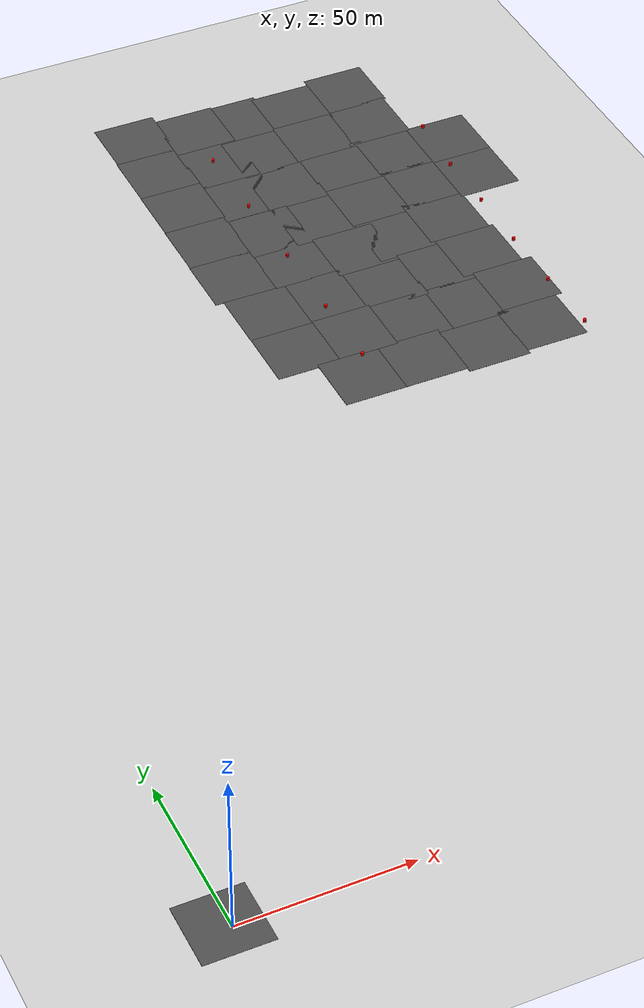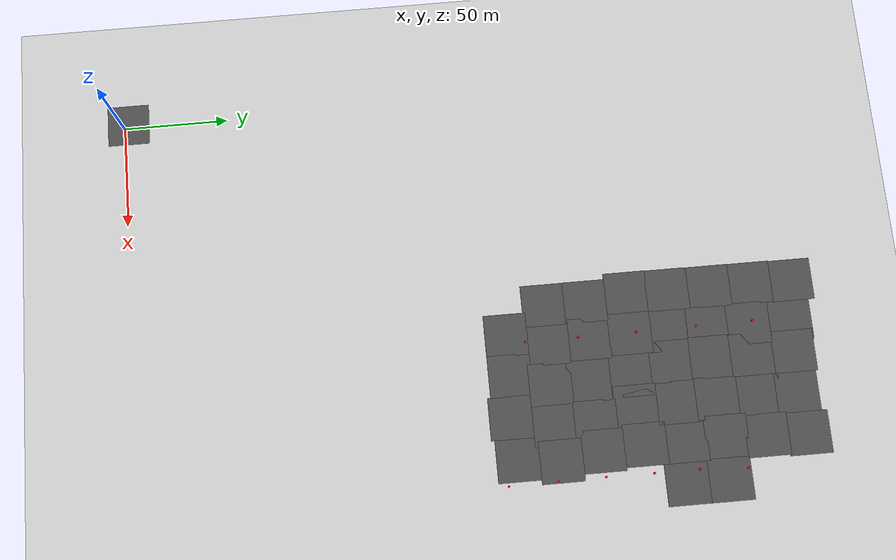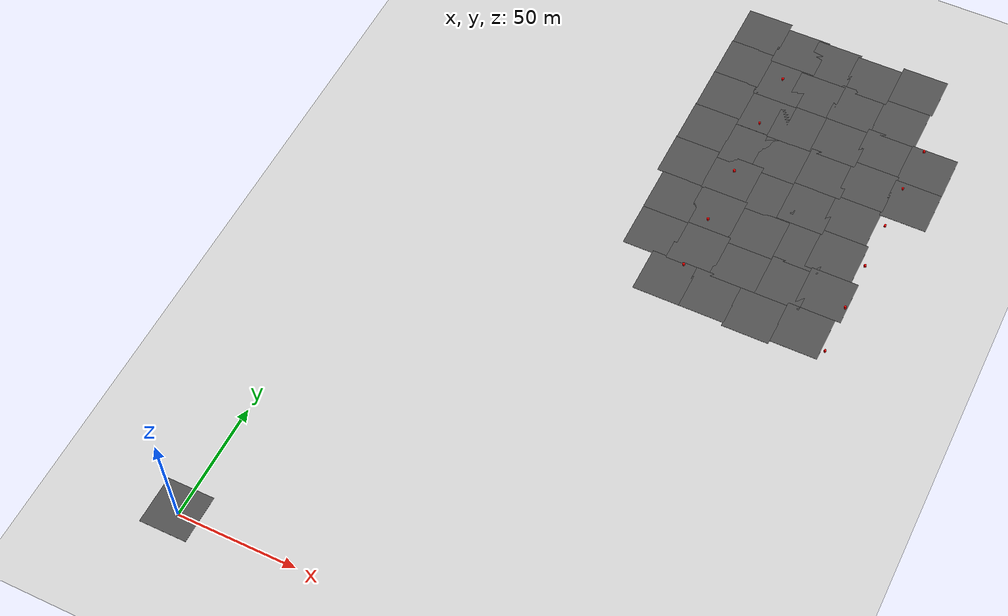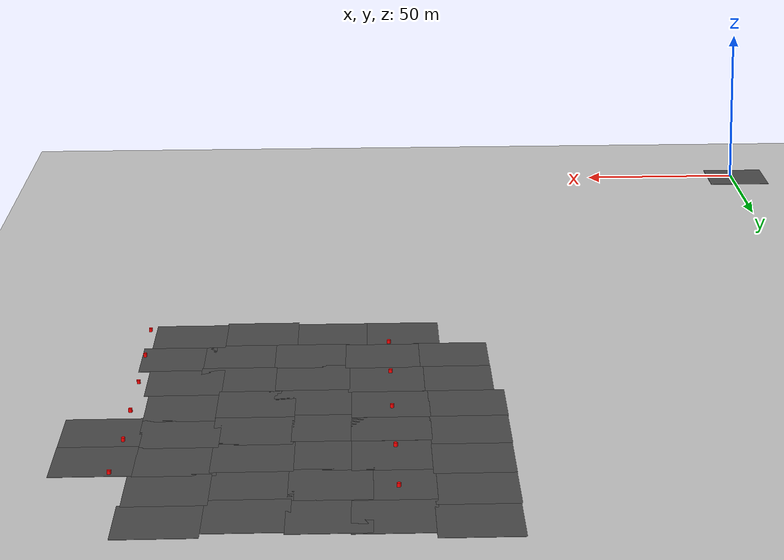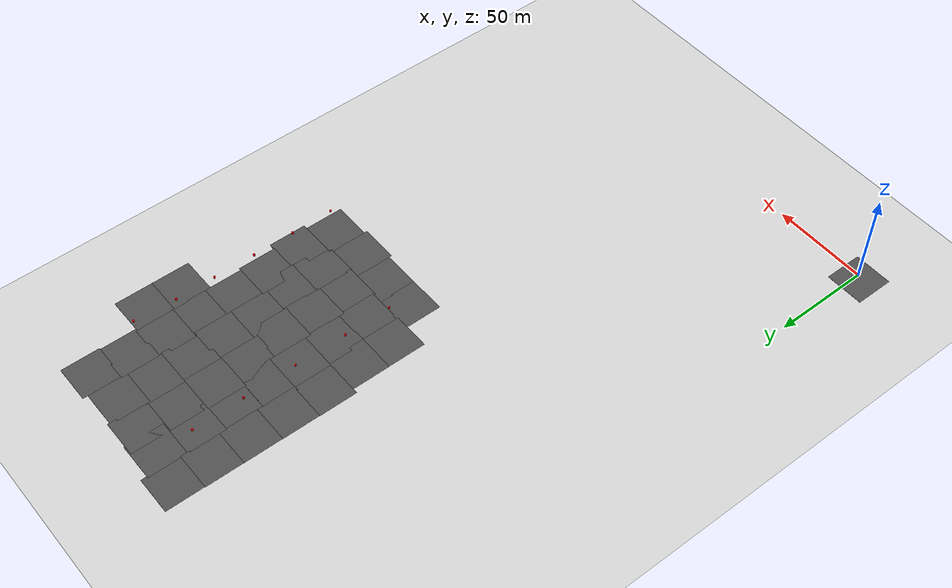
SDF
<sdf version="1.6">
 <world name="default">
  <model name="ground_plane">
   <static>1</static>
   <link name="link">
    <collision name="collision">
     <geometry><plane><normal>0 0 1</normal><size>100 100</size></plane></geometry>
     <surface>
      <contact><collide_bitmask>65535</collide_bitmask></contact>
      <friction><ode><mu>100</mu><mu2>50</mu2></ode></friction>
     </surface>
    </collision>
    <visual name="visual">
     <cast_shadows>0</cast_shadows>
     <geometry><plane><normal>0 0 1</normal><size>100 100</size></plane></geometry>
     <material>
      <script><uri>file://media/materials/scripts/gazebo.material</uri><name>Gazebo/Grey</name></script>
     </material>
    </visual>
   </link>
  </model>
  <model name="asphalt_plane">
   <static>1</static>
   <link name="link">
    <collision name="collision"><geometry><box><size>20 20 0.1</size></box></geometry></collision>
    <visual name="visual">
     <cast_shadows>0</cast_shadows>
     <geometry><box><size>20 20 0.1</size></box></geometry>
     <material>
      <script>
       <uri>model://asphalt_plane/materials/scripts</uri>
       <uri>model://asphalt_plane/materials/textures</uri>
       <name>vrc/asphalt</name>
      </script>
     </material>
    </visual>
   </link>
   <pose>-1.68563 1.69754 0 0 -0 0</pose>
  </model>
  <model name="asphalt_plane_209">
   <static>1</static>
   <link name="link">
    <collision name="collision"><geometry><box><size>20 20 0.1</size></box></geometry></collision>
    <visual name="visual">
     <cast_shadows>0</cast_shadows>
     <geometry><box><size>20 20 0.1</size></box></geometry>
     <material>
      <script>
       <uri>model://asphalt_plane/materials/scripts</uri>
       <uri>model://asphalt_plane/materials/textures</uri>
       <name>vrc/asphalt</name>
      </script>
     </material>
    </visual>
   </link>
   <pose>177.845 175.682 0 0 -0 0</pose>
  </model>
  <model name="asphalt_plane_210">
   <static>1</static>
   <link name="link">
    <collision name="collision"><geometry><box><size>20 20 0.1</size></box></geometry></collision>
    <visual name="visual">
     <cast_shadows>0</cast_shadows>
     <geometry><box><size>20 20 0.1</size></box></geometry>
     <material>
      <script>
       <uri>model://asphalt_plane/materials/scripts</uri>
       <uri>model://asphalt_plane/materials/textures</uri>
       <name>vrc/asphalt</name>
      </script>
     </material>
    </visual>
   </link>
   <pose>158.044 174.16 0 0 -0 0</pose>
  </model>
  <model name="asphalt_plane_211">
   <static>1</static>
   <link name="link">
    <collision name="collision"><geometry><box><size>20 20 0.1</size></box></geometry></collision>
    <visual name="visual">
     <cast_shadows>0</cast_shadows>
     <geometry><box><size>20 20 0.1</size></box></geometry>
     <material>
      <script>
       <uri>model://asphalt_plane/materials/scripts</uri>
       <uri>model://asphalt_plane/materials/textures</uri>
       <name>vrc/asphalt</name>
      </script>
     </material>
    </visual>
   </link>
   <pose>138.278 175.649 0 0 -0 0</pose>
  </model>
  <model name="asphalt_plane_212">
   <static>1</static>
   <link name="link">
    <collision name="collision"><geometry><box><size>20 20 0.1</size></box></geometry></collision>
    <visual name="visual">
     <cast_shadows>0</cast_shadows>
     <geometry><box><size>20 20 0.1</size></box></geometry>
     <material>
      <script>
       <uri>model://asphalt_plane/materials/scripts</uri>
       <uri>model://asphalt_plane/materials/textures</uri>
       <name>vrc/asphalt</name>
      </script>
     </material>
    </visual>
   </link>
   <pose>118.876 175.615 0 0 -0 0</pose>
  </model>
  <model name="asphalt_plane_254">
   <static>1</static>
   <link name="link">
    <collision name="collision"><geometry><box><size>20 20 0.1</size></box></geometry></collision>
    <visual name="visual">
     <cast_shadows>0</cast_shadows>
     <geometry><box><size>20 20 0.1</size></box></geometry>
     <material>
      <script>
       <uri>model://asphalt_plane/materials/scripts</uri>
       <uri>model://asphalt_plane/materials/textures</uri>
       <name>vrc/asphalt</name>
      </script>
     </material>
    </visual>
   </link>
   <pose>195.04 252.1 0 0 -0 0</pose>
  </model>
  <model name="asphalt_plane_255">
   <static>1</static>
   <link name="link">
    <collision name="collision"><geometry><box><size>20 20 0.1</size></box></geometry></collision>
    <visual name="visual">
     <cast_shadows>0</cast_shadows>
     <geometry><box><size>20 20 0.1</size></box></geometry>
     <material>
      <script>
       <uri>model://asphalt_plane/materials/scripts</uri>
       <uri>model://asphalt_plane/materials/textures</uri>
       <name>vrc/asphalt</name>
      </script>
     </material>
    </visual>
   </link>
   <pose>195.074 272.061 0 0 -0 0</pose>
  </model>
  <model name="asphalt_plane_258">
   <static>1</static>
   <link name="link">
    <collision name="collision"><geometry><box><size>20 20 0.1</size></box></geometry></collision>
    <visual name="visual">
     <cast_shadows>0</cast_shadows>
     <geometry><box><size>20 20 0.1</size></box></geometry>
     <material>
      <script>
       <uri>model://asphalt_plane/materials/scripts</uri>
       <uri>model://asphalt_plane/materials/textures</uri>
       <name>vrc/asphalt</name>
      </script>
     </material>
    </visual>
   </link>
   <pose>180.027 195.608 0 0 -0 0</pose>
  </model>
  <model name="asphalt_plane_259">
   <static>1</static>
   <link name="link">
    <collision name="collision"><geometry><box><size>20 20 0.1</size></box></geometry></collision>
    <visual name="visual">
     <cast_shadows>0</cast_shadows>
     <geometry><box><size>20 20 0.1</size></box></geometry>
     <material>
      <script>
       <uri>model://asphalt_plane/materials/scripts</uri>
       <uri>model://asphalt_plane/materials/textures</uri>
       <name>vrc/asphalt</name>
      </script>
     </material>
    </visual>
   </link>
   <pose>176.951 215.083 0 0 -0 0</pose>
  </model>
  <model name="asphalt_plane_260">
   <static>1</static>
   <link name="link">
    <collision name="collision"><geometry><box><size>20 20 0.1</size></box></geometry></collision>
    <visual name="visual">
     <cast_shadows>0</cast_shadows>
     <geometry><box><size>20 20 0.1</size></box></geometry>
     <material>
      <script>
       <uri>model://asphalt_plane/materials/scripts</uri>
       <uri>model://asphalt_plane/materials/textures</uri>
       <name>vrc/asphalt</name>
      </script>
     </material>
    </visual>
   </link>
   <pose>175.712 234.853 0 0 -0 0</pose>
  </model>
  <model name="asphalt_plane_261">
   <static>1</static>
   <link name="link">
    <collision name="collision"><geometry><box><size>20 20 0.1</size></box></geometry></collision>
    <visual name="visual">
     <cast_shadows>0</cast_shadows>
     <geometry><box><size>20 20 0.1</size></box></geometry>
     <material>
      <script>
       <uri>model://asphalt_plane/materials/scripts</uri>
       <uri>model://asphalt_plane/materials/textures</uri>
       <name>vrc/asphalt</name>
      </script>
     </material>
    </visual>
   </link>
   <pose>175.664 253.788 0 0 -0 0</pose>
  </model>
  <model name="asphalt_plane_262">
   <static>1</static>
   <link name="link">
    <collision name="collision"><geometry><box><size>20 20 0.1</size></box></geometry></collision>
    <visual name="visual">
     <cast_shadows>0</cast_shadows>
     <geometry><box><size>20 20 0.1</size></box></geometry>
     <material>
      <script>
       <uri>model://asphalt_plane/materials/scripts</uri>
       <uri>model://asphalt_plane/materials/textures</uri>
       <name>vrc/asphalt</name>
      </script>
     </material>
    </visual>
   </link>
   <pose>175.162 272.741 0 0 -0 0</pose>
  </model>
  <model name="asphalt_plane_263">
   <static>1</static>
   <link name="link">
    <collision name="collision"><geometry><box><size>20 20 0.1</size></box></geometry></collision>
    <visual name="visual">
     <cast_shadows>0</cast_shadows>
     <geometry><box><size>20 20 0.1</size></box></geometry>
     <material>
      <script>
       <uri>model://asphalt_plane/materials/scripts</uri>
       <uri>model://asphalt_plane/materials/textures</uri>
       <name>vrc/asphalt</name>
      </script>
     </material>
    </visual>
   </link>
   <pose>176.168 291.573 0 0 -0 0</pose>
  </model>
  <model name="asphalt_plane_264">
   <static>1</static>
   <link name="link">
    <collision name="collision"><geometry><box><size>20 20 0.1</size></box></geometry></collision>
    <visual name="visual">
     <cast_shadows>0</cast_shadows>
     <geometry><box><size>20 20 0.1</size></box></geometry>
     <material>
      <script>
       <uri>model://asphalt_plane/materials/scripts</uri>
       <uri>model://asphalt_plane/materials/textures</uri>
       <name>vrc/asphalt</name>
      </script>
     </material>
    </visual>
   </link>
   <pose>176.933 310.814 0 0 -0 0</pose>
  </model>
  <model name="asphalt_plane_265">
   <static>1</static>
   <link name="link">
    <collision name="collision"><geometry><box><size>20 20 0.1</size></box></geometry></collision>
    <visual name="visual">
     <cast_shadows>0</cast_shadows>
     <geometry><box><size>20 20 0.1</size></box></geometry>
     <material>
      <script>
       <uri>model://asphalt_plane/materials/scripts</uri>
       <uri>model://asphalt_plane/materials/textures</uri>
       <name>vrc/asphalt</name>
      </script>
     </material>
    </visual>
   </link>
   <pose>162.852 194.134 0 0 -0 0</pose>
  </model>
  <model name="asphalt_plane_266">
   <static>1</static>
   <link name="link">
    <collision name="collision"><geometry><box><size>20 20 0.1</size></box></geometry></collision>
    <visual name="visual">
     <cast_shadows>0</cast_shadows>
     <geometry><box><size>20 20 0.1</size></box></geometry>
     <material>
      <script>
       <uri>model://asphalt_plane/materials/scripts</uri>
       <uri>model://asphalt_plane/materials/textures</uri>
       <name>vrc/asphalt</name>
      </script>
     </material>
    </visual>
   </link>
   <pose>163.104 213.37 0 0 -0 0</pose>
  </model>
  <model name="asphalt_plane_267">
   <static>1</static>
   <link name="link">
    <collision name="collision"><geometry><box><size>20 20 0.1</size></box></geometry></collision>
    <visual name="visual">
     <cast_shadows>0</cast_shadows>
     <geometry><box><size>20 20 0.1</size></box></geometry>
     <material>
      <script>
       <uri>model://asphalt_plane/materials/scripts</uri>
       <uri>model://asphalt_plane/materials/textures</uri>
       <name>vrc/asphalt</name>
      </script>
     </material>
    </visual>
   </link>
   <pose>157.556 232.614 0 0 -0 0</pose>
  </model>
  <model name="asphalt_plane_268">
   <static>1</static>
   <link name="link">
    <collision name="collision"><geometry><box><size>20 20 0.1</size></box></geometry></collision>
    <visual name="visual">
     <cast_shadows>0</cast_shadows>
     <geometry><box><size>20 20 0.1</size></box></geometry>
     <material>
      <script>
       <uri>model://asphalt_plane/materials/scripts</uri>
       <uri>model://asphalt_plane/materials/textures</uri>
       <name>vrc/asphalt</name>
      </script>
     </material>
    </visual>
   </link>
   <pose>157.495 252.464 0 0 -0 0</pose>
  </model>
  <model name="asphalt_plane_269">
   <static>1</static>
   <link name="link">
    <collision name="collision"><geometry><box><size>20 20 0.1</size></box></geometry></collision>
    <visual name="visual">
     <cast_shadows>0</cast_shadows>
     <geometry><box><size>20 20 0.1</size></box></geometry>
     <material>
      <script>
       <uri>model://asphalt_plane/materials/scripts</uri>
       <uri>model://asphalt_plane/materials/textures</uri>
       <name>vrc/asphalt</name>
      </script>
     </material>
    </visual>
   </link>
   <pose>156.958 270.776 0 0 -0 0</pose>
  </model>
  <model name="asphalt_plane_270">
   <static>1</static>
   <link name="link">
    <collision name="collision"><geometry><box><size>20 20 0.1</size></box></geometry></collision>
    <visual name="visual">
     <cast_shadows>0</cast_shadows>
     <geometry><box><size>20 20 0.1</size></box></geometry>
     <material>
      <script>
       <uri>model://asphalt_plane/materials/scripts</uri>
       <uri>model://asphalt_plane/materials/textures</uri>
       <name>vrc/asphalt</name>
      </script>
     </material>
    </visual>
   </link>
   <pose>156.471 290.495 0 0 -0 0</pose>
  </model>
  <model name="asphalt_plane_271">
   <static>1</static>
   <link name="link">
    <collision name="collision"><geometry><box><size>20 20 0.1</size></box></geometry></collision>
    <visual name="visual">
     <cast_shadows>0</cast_shadows>
     <geometry><box><size>20 20 0.1</size></box></geometry>
     <material>
      <script>
       <uri>model://asphalt_plane/materials/scripts</uri>
       <uri>model://asphalt_plane/materials/textures</uri>
       <name>vrc/asphalt</name>
      </script>
     </material>
    </visual>
   </link>
   <pose>156.937 308.365 0 0 -0 0</pose>
  </model>
  <model name="asphalt_plane_272">
   <static>1</static>
   <link name="link">
    <collision name="collision"><geometry><box><size>20 20 0.1</size></box></geometry></collision>
    <visual name="visual">
     <cast_shadows>0</cast_shadows>
     <geometry><box><size>20 20 0.1</size></box></geometry>
     <material>
      <script>
       <uri>model://asphalt_plane/materials/scripts</uri>
       <uri>model://asphalt_plane/materials/textures</uri>
       <name>vrc/asphalt</name>
      </script>
     </material>
    </visual>
   </link>
   <pose>143.805 194.154 0 0 -0 0</pose>
  </model>
  <model name="asphalt_plane_273">
   <static>1</static>
   <link name="link">
    <collision name="collision"><geometry><box><size>20 20 0.1</size></box></geometry></collision>
    <visual name="visual">
     <cast_shadows>0</cast_shadows>
     <geometry><box><size>20 20 0.1</size></box></geometry>
     <material>
      <script>
       <uri>model://asphalt_plane/materials/scripts</uri>
       <uri>model://asphalt_plane/materials/textures</uri>
       <name>vrc/asphalt</name>
      </script>
     </material>
    </visual>
   </link>
   <pose>143.667 212.343 0 0 -0 0</pose>
  </model>
  <model name="asphalt_plane_274">
   <static>1</static>
   <link name="link">
    <collision name="collision"><geometry><box><size>20 20 0.1</size></box></geometry></collision>
    <visual name="visual">
     <cast_shadows>0</cast_shadows>
     <geometry><box><size>20 20 0.1</size></box></geometry>
     <material>
      <script>
       <uri>model://asphalt_plane/materials/scripts</uri>
       <uri>model://asphalt_plane/materials/textures</uri>
       <name>vrc/asphalt</name>
      </script>
     </material>
    </visual>
   </link>
   <pose>143.09 231.494 0 0 -0 0</pose>
  </model>
  <model name="asphalt_plane_275">
   <static>1</static>
   <link name="link">
    <collision name="collision"><geometry><box><size>20 20 0.1</size></box></geometry></collision>
    <visual name="visual">
     <cast_shadows>0</cast_shadows>
     <geometry><box><size>20 20 0.1</size></box></geometry>
     <material>
      <script>
       <uri>model://asphalt_plane/materials/scripts</uri>
       <uri>model://asphalt_plane/materials/textures</uri>
       <name>vrc/asphalt</name>
      </script>
     </material>
    </visual>
   </link>
   <pose>137.999 250.659 0 0 -0 0</pose>
  </model>
  <model name="asphalt_plane_276">
   <static>1</static>
   <link name="link">
    <collision name="collision"><geometry><box><size>20 20 0.1</size></box></geometry></collision>
    <visual name="visual">
     <cast_shadows>0</cast_shadows>
     <geometry><box><size>20 20 0.1</size></box></geometry>
     <material>
      <script>
       <uri>model://asphalt_plane/materials/scripts</uri>
       <uri>model://asphalt_plane/materials/textures</uri>
       <name>vrc/asphalt</name>
      </script>
     </material>
    </visual>
   </link>
   <pose>137.581 270.48 0 0 -0 0</pose>
  </model>
  <model name="asphalt_plane_277">
   <static>1</static>
   <link name="link">
    <collision name="collision"><geometry><box><size>20 20 0.1</size></box></geometry></collision>
    <visual name="visual">
     <cast_shadows>0</cast_shadows>
     <geometry><box><size>20 20 0.1</size></box></geometry>
     <material>
      <script>
       <uri>model://asphalt_plane/materials/scripts</uri>
       <uri>model://asphalt_plane/materials/textures</uri>
       <name>vrc/asphalt</name>
      </script>
     </material>
    </visual>
   </link>
   <pose>137.969 289.589 0 0 -0 0</pose>
  </model>
  <model name="asphalt_plane_278">
   <static>1</static>
   <link name="link">
    <collision name="collision"><geometry><box><size>20 20 0.1</size></box></geometry></collision>
    <visual name="visual">
     <cast_shadows>0</cast_shadows>
     <geometry><box><size>20 20 0.1</size></box></geometry>
     <material>
      <script>
       <uri>model://asphalt_plane/materials/scripts</uri>
       <uri>model://asphalt_plane/materials/textures</uri>
       <name>vrc/asphalt</name>
      </script>
     </material>
    </visual>
   </link>
   <pose>138.118 309.497 0 0 -0 0</pose>
  </model>
  <model name="asphalt_plane_279">
   <static>1</static>
   <link name="link">
    <collision name="collision"><geometry><box><size>20 20 0.1</size></box></geometry></collision>
    <visual name="visual">
     <cast_shadows>0</cast_shadows>
     <geometry><box><size>20 20 0.1</size></box></geometry>
     <material>
      <script>
       <uri>model://asphalt_plane/materials/scripts</uri>
       <uri>model://asphalt_plane/materials/textures</uri>
       <name>vrc/asphalt</name>
      </script>
     </material>
    </visual>
   </link>
   <pose>124.761 194.927 0 0 -0 0</pose>
  </model>
  <model name="asphalt_plane_280">
   <static>1</static>
   <link name="link">
    <collision name="collision"><geometry><box><size>20 20 0.1</size></box></geometry></collision>
    <visual name="visual">
     <cast_shadows>0</cast_shadows>
     <geometry><box><size>20 20 0.1</size></box></geometry>
     <material>
      <script>
       <uri>model://asphalt_plane/materials/scripts</uri>
       <uri>model://asphalt_plane/materials/textures</uri>
       <name>vrc/asphalt</name>
      </script>
     </material>
    </visual>
   </link>
   <pose>123.994 214.387 0 0 -0 0</pose>
  </model>
  <model name="asphalt_plane_281">
   <static>1</static>
   <link name="link">
    <collision name="collision"><geometry><box><size>20 20 0.1</size></box></geometry></collision>
    <visual name="visual">
     <cast_shadows>0</cast_shadows>
     <geometry><box><size>20 20 0.1</size></box></geometry>
     <material>
      <script>
       <uri>model://asphalt_plane/materials/scripts</uri>
       <uri>model://asphalt_plane/materials/textures</uri>
       <name>vrc/asphalt</name>
      </script>
     </material>
    </visual>
   </link>
   <pose>106.022 194.436 0 0 -0 0</pose>
  </model>
  <model name="asphalt_plane_282">
   <static>1</static>
   <link name="link">
    <collision name="collision"><geometry><box><size>20 20 0.1</size></box></geometry></collision>
    <visual name="visual">
     <cast_shadows>0</cast_shadows>
     <geometry><box><size>20 20 0.1</size></box></geometry>
     <material>
      <script>
       <uri>model://asphalt_plane/materials/scripts</uri>
       <uri>model://asphalt_plane/materials/textures</uri>
       <name>vrc/asphalt</name>
      </script>
     </material>
    </visual>
   </link>
   <pose>105.956 214.414 0 0 -0 0</pose>
  </model>
  <model name="asphalt_plane_283">
   <static>1</static>
   <link name="link">
    <collision name="collision"><geometry><box><size>20 20 0.1</size></box></geometry></collision>
    <visual name="visual">
     <cast_shadows>0</cast_shadows>
     <geometry><box><size>20 20 0.1</size></box></geometry>
     <material>
      <script>
       <uri>model://asphalt_plane/materials/scripts</uri>
       <uri>model://asphalt_plane/materials/textures</uri>
       <name>vrc/asphalt</name>
      </script>
     </material>
    </visual>
   </link>
   <pose>123.141 233.97 0 0 -0 0</pose>
  </model>
  <model name="asphalt_plane_284">
   <static>1</static>
   <link name="link">
    <collision name="collision"><geometry><box><size>20 20 0.1</size></box></geometry></collision>
    <visual name="visual">
     <cast_shadows>0</cast_shadows>
     <geometry><box><size>20 20 0.1</size></box></geometry>
     <material>
      <script>
       <uri>model://asphalt_plane/materials/scripts</uri>
       <uri>model://asphalt_plane/materials/textures</uri>
       <name>vrc/asphalt</name>
      </script>
     </material>
    </visual>
   </link>
   <pose>123.209 250.948 0 0 -0 0</pose>
  </model>
  <model name="asphalt_plane_285">
   <static>1</static>
   <link name="link">
    <collision name="collision"><geometry><box><size>20 20 0.1</size></box></geometry></collision>
    <visual name="visual">
     <cast_shadows>0</cast_shadows>
     <geometry><box><size>20 20 0.1</size></box></geometry>
     <material>
      <script>
       <uri>model://asphalt_plane/materials/scripts</uri>
       <uri>model://asphalt_plane/materials/textures</uri>
       <name>vrc/asphalt</name>
      </script>
     </material>
    </visual>
   </link>
   <pose>123.159 270.986 0 0 -0 0</pose>
  </model>
  <model name="asphalt_plane_286">
   <static>1</static>
   <link name="link">
    <collision name="collision"><geometry><box><size>20 20 0.1</size></box></geometry></collision>
    <visual name="visual">
     <cast_shadows>0</cast_shadows>
     <geometry><box><size>20 20 0.1</size></box></geometry>
     <material>
      <script>
       <uri>model://asphalt_plane/materials/scripts</uri>
       <uri>model://asphalt_plane/materials/textures</uri>
       <name>vrc/asphalt</name>
      </script>
     </material>
    </visual>
   </link>
   <pose>123.061 290.098 0 0 -0 0</pose>
  </model>
  <model name="asphalt_plane_287">
   <static>1</static>
   <link name="link">
    <collision name="collision"><geometry><box><size>20 20 0.1</size></box></geometry></collision>
    <visual name="visual">
     <cast_shadows>0</cast_shadows>
     <geometry><box><size>20 20 0.1</size></box></geometry>
     <material>
      <script>
       <uri>model://asphalt_plane/materials/scripts</uri>
       <uri>model://asphalt_plane/materials/textures</uri>
       <name>vrc/asphalt</name>
      </script>
     </material>
    </visual>
   </link>
   <pose>123.152 310.084 0 0 -0 0</pose>
  </model>
  <model name="asphalt_plane_288">
   <static>1</static>
   <link name="link">
    <collision name="collision"><geometry><box><size>20 20 0.1</size></box></geometry></collision>
    <visual name="visual">
     <cast_shadows>0</cast_shadows>
     <geometry><box><size>20 20 0.1</size></box></geometry>
     <material>
      <script>
       <uri>model://asphalt_plane/materials/scripts</uri>
       <uri>model://asphalt_plane/materials/textures</uri>
       <name>vrc/asphalt</name>
      </script>
     </material>
    </visual>
   </link>
   <pose>103.383 234.279 0 0 -0 0</pose>
  </model>
  <model name="asphalt_plane_289">
   <static>1</static>
   <link name="link">
    <collision name="collision"><geometry><box><size>20 20 0.1</size></box></geometry></collision>
    <visual name="visual">
     <cast_shadows>0</cast_shadows>
     <geometry><box><size>20 20 0.1</size></box></geometry>
     <material>
      <script>
       <uri>model://asphalt_plane/materials/scripts</uri>
       <uri>model://asphalt_plane/materials/textures</uri>
       <name>vrc/asphalt</name>
      </script>
     </material>
    </visual>
   </link>
   <pose>103.523 253.875 0 0 -0 0</pose>
  </model>
  <model name="asphalt_plane_290">
   <static>1</static>
   <link name="link">
    <collision name="collision"><geometry><box><size>20 20 0.1</size></box></geometry></collision>
    <visual name="visual">
     <cast_shadows>0</cast_shadows>
     <geometry><box><size>20 20 0.1</size></box></geometry>
     <material>
      <script>
       <uri>model://asphalt_plane/materials/scripts</uri>
       <uri>model://asphalt_plane/materials/textures</uri>
       <name>vrc/asphalt</name>
      </script>
     </material>
    </visual>
   </link>
   <pose>103.655 273.837 0 0 -0 0</pose>
  </model>
  <model name="asphalt_plane_291">
   <static>1</static>
   <link name="link">
    <collision name="collision"><geometry><box><size>20 20 0.1</size></box></geometry></collision>
    <visual name="visual">
     <cast_shadows>0</cast_shadows>
     <geometry><box><size>20 20 0.1</size></box></geometry>
     <material>
      <script>
       <uri>model://asphalt_plane/materials/scripts</uri>
       <uri>model://asphalt_plane/materials/textures</uri>
       <name>vrc/asphalt</name>
      </script>
     </material>
    </visual>
   </link>
   <pose>103.735 293.517 0 0 -0 0</pose>
  </model>
  <model name="asphalt_plane_292">
   <static>1</static>
   <link name="link">
    <collision name="collision"><geometry><box><size>20 20 0.1</size></box></geometry></collision>
    <visual name="visual">
     <cast_shadows>0</cast_shadows>
     <geometry><box><size>20 20 0.1</size></box></geometry>
     <material>
      <script>
       <uri>model://asphalt_plane/materials/scripts</uri>
       <uri>model://asphalt_plane/materials/textures</uri>
       <name>vrc/asphalt</name>
      </script>
     </material>
    </visual>
   </link>
   <pose>103.993 313.16 0 0 -0 0</pose>
  </model>
  <model name="station_29">
   <link name="link">
    <inertial>
     <mass>1</mass>
     <inertia><ixx>0.145833</ixx><ixy>0</ixy><ixz>0</ixz><iyy>0.145833</iyy><iyz>0</iyz><izz>0.125</izz></inertia>
    </inertial>
    <visual name="visual">
     <geometry><cylinder><radius>0.5</radius><length>1</length></cylinder></geometry>
     <material>
      <script><name>Gazebo/Grey</name><uri>file://media/materials/scripts/gazebo.material</uri></script>
      <shader type="vertex"><normal_map>__default__</normal_map></shader>
      <ambient>1 0 0 0</ambient>
      <diffuse>0 0 0 1</diffuse>
      <specular>0.91 0.01 0.01 1</specular>
      <emissive>0 0 0 1</emissive>
     </material>
    </visual>
    <collision name="collision">
     <geometry><cylinder><radius>0.5</radius><length>1</length></cylinder></geometry>
     <surface>
      <friction>
       <ode><mu>1</mu><mu2>1</mu2><fdir1>0 0 0</fdir1><slip1>0</slip1><slip2>0</slip2></ode>
       <torsional>
        <coefficient>1</coefficient>
        <patch_radius>0</patch_radius>
        <surface_radius>0</surface_radius>
        <use_patch_radius>1</use_patch_radius>
        <ode><slip>0</slip></ode>
       </torsional>
      </friction>
      <bounce><restitution_coefficient>0</restitution_coefficient><threshold>1e+06</threshold></bounce>
      <contact>
       <collide_without_contact>0</collide_without_contact>
       <collide_without_contact_bitmask>1</collide_without_contact_bitmask>
       <collide_bitmask>1</collide_bitmask>
       <ode>
        <soft_cfm>0</soft_cfm>
        <soft_erp>0.2</soft_erp>
        <kp>1e+13</kp>
        <kd>1</kd>
        <max_vel>0.01</max_vel>
        <min_depth>0</min_depth>
       </ode>
       <bullet>
        <split_impulse>1</split_impulse>
        <split_impulse_penetration_threshold>-0.01</split_impulse_penetration_threshold>
        <soft_cfm>0</soft_cfm>
        <soft_erp>0.2</soft_erp>
        <kp>1e+13</kp>
        <kd>1</kd>
       </bullet>
      </contact>
     </surface>
    </collision>
   </link>
   <static>1</static>
   <pose>190.531 280.694 0.619557 0 -0 0</pose>
  </model>
  <model name="station_30">
   <link name="link">
    <inertial>
     <mass>1</mass>
     <inertia><ixx>0.145833</ixx><ixy>0</ixy><ixz>0</ixz><iyy>0.145833</iyy><iyz>0</iyz><izz>0.125</izz></inertia>
    </inertial>
    <visual name="visual">
     <geometry><cylinder><radius>0.5</radius><length>1</length></cylinder></geometry>
     <material>
      <script><name>Gazebo/Grey</name><uri>file://media/materials/scripts/gazebo.material</uri></script>
      <shader type="vertex"><normal_map>__default__</normal_map></shader>
      <ambient>1 0 0 0</ambient>
      <diffuse>0 0 0 1</diffuse>
      <specular>0.91 0.01 0.01 1</specular>
      <emissive>0 0 0 1</emissive>
     </material>
    </visual>
    <collision name="collision">
     <geometry><cylinder><radius>0.5</radius><length>1</length></cylinder></geometry>
     <surface>
      <friction>
       <ode><mu>1</mu><mu2>1</mu2><fdir1>0 0 0</fdir1><slip1>0</slip1><slip2>0</slip2></ode>
       <torsional>
        <coefficient>1</coefficient>
        <patch_radius>0</patch_radius>
        <surface_radius>0</surface_radius>
        <use_patch_radius>1</use_patch_radius>
        <ode><slip>0</slip></ode>
       </torsional>
      </friction>
      <bounce><restitution_coefficient>0</restitution_coefficient><threshold>1e+06</threshold></bounce>
      <contact>
       <collide_without_contact>0</collide_without_contact>
       <collide_without_contact_bitmask>1</collide_without_contact_bitmask>
       <collide_bitmask>1</collide_bitmask>
       <ode>
        <soft_cfm>0</soft_cfm>
        <soft_erp>0.2</soft_erp>
        <kp>1e+13</kp>
        <kd>1</kd>
        <max_vel>0.01</max_vel>
        <min_depth>0</min_depth>
       </ode>
       <bullet>
        <split_impulse>1</split_impulse>
        <split_impulse_penetration_threshold>-0.01</split_impulse_penetration_threshold>
        <soft_cfm>0</soft_cfm>
        <soft_erp>0.2</soft_erp>
        <kp>1e+13</kp>
        <kd>1</kd>
       </bullet>
      </contact>
     </surface>
    </collision>
   </link>
   <static>1</static>
   <pose>189.211 258.511 0.619557 0 -0 0</pose>
  </model>
  <model name="station_31">
   <link name="link">
    <inertial>
     <mass>1</mass>
     <inertia><ixx>0.145833</ixx><ixy>0</ixy><ixz>0</ixz><iyy>0.145833</iyy><iyz>0</iyz><izz>0.125</izz></inertia>
    </inertial>
    <visual name="visual">
     <geometry><cylinder><radius>0.5</radius><length>1</length></cylinder></geometry>
     <material>
      <script><name>Gazebo/Grey</name><uri>file://media/materials/scripts/gazebo.material</uri></script>
      <shader type="vertex"><normal_map>__default__</normal_map></shader>
      <ambient>1 0 0 0</ambient>
      <diffuse>0 0 0 1</diffuse>
      <specular>0.91 0.01 0.01 1</specular>
      <emissive>0 0 0 1</emissive>
     </material>
    </visual>
    <collision name="collision">
     <geometry><cylinder><radius>0.5</radius><length>1</length></cylinder></geometry>
     <surface>
      <friction>
       <ode><mu>1</mu><mu2>1</mu2><fdir1>0 0 0</fdir1><slip1>0</slip1><slip2>0</slip2></ode>
       <torsional>
        <coefficient>1</coefficient>
        <patch_radius>0</patch_radius>
        <surface_radius>0</surface_radius>
        <use_patch_radius>1</use_patch_radius>
        <ode><slip>0</slip></ode>
       </torsional>
      </friction>
      <bounce><restitution_coefficient>0</restitution_coefficient><threshold>1e+06</threshold></bounce>
      <contact>
       <collide_without_contact>0</collide_without_contact>
       <collide_without_contact_bitmask>1</collide_without_contact_bitmask>
       <collide_bitmask>1</collide_bitmask>
       <ode>
        <soft_cfm>0</soft_cfm>
        <soft_erp>0.2</soft_erp>
        <kp>1e+13</kp>
        <kd>1</kd>
        <max_vel>0.01</max_vel>
        <min_depth>0</min_depth>
       </ode>
       <bullet>
        <split_impulse>1</split_impulse>
        <split_impulse_penetration_threshold>-0.01</split_impulse_penetration_threshold>
        <soft_cfm>0</soft_cfm>
        <soft_erp>0.2</soft_erp>
        <kp>1e+13</kp>
        <kd>1</kd>
       </bullet>
      </contact>
     </surface>
    </collision>
   </link>
   <static>1</static>
   <pose>189.29 237.366 0.619557 0 -0 0</pose>
  </model>
  <model name="station_32">
   <link name="link">
    <inertial>
     <mass>1</mass>
     <inertia><ixx>0.145833</ixx><ixy>0</ixy><ixz>0</ixz><iyy>0.145833</iyy><iyz>0</iyz><izz>0.125</izz></inertia>
    </inertial>
    <visual name="visual">
     <geometry><cylinder><radius>0.5</radius><length>1</length></cylinder></geometry>
     <material>
      <script><name>Gazebo/Grey</name><uri>file://media/materials/scripts/gazebo.material</uri></script>
      <shader type="vertex"><normal_map>__default__</normal_map></shader>
      <ambient>1 0 0 0</ambient>
      <diffuse>0 0 0 1</diffuse>
      <specular>0.91 0.01 0.01 1</specular>
      <emissive>0 0 0 1</emissive>
     </material>
    </visual>
    <collision name="collision">
     <geometry><cylinder><radius>0.5</radius><length>1</length></cylinder></geometry>
     <surface>
      <friction>
       <ode><mu>1</mu><mu2>1</mu2><fdir1>0 0 0</fdir1><slip1>0</slip1><slip2>0</slip2></ode>
       <torsional>
        <coefficient>1</coefficient>
        <patch_radius>0</patch_radius>
        <surface_radius>0</surface_radius>
        <use_patch_radius>1</use_patch_radius>
        <ode><slip>0</slip></ode>
       </torsional>
      </friction>
      <bounce><restitution_coefficient>0</restitution_coefficient><threshold>1e+06</threshold></bounce>
      <contact>
       <collide_without_contact>0</collide_without_contact>
       <collide_without_contact_bitmask>1</collide_without_contact_bitmask>
       <collide_bitmask>1</collide_bitmask>
       <ode>
        <soft_cfm>0</soft_cfm>
        <soft_erp>0.2</soft_erp>
        <kp>1e+13</kp>
        <kd>1</kd>
        <max_vel>0.01</max_vel>
        <min_depth>0</min_depth>
       </ode>
       <bullet>
        <split_impulse>1</split_impulse>
        <split_impulse_penetration_threshold>-0.01</split_impulse_penetration_threshold>
        <soft_cfm>0</soft_cfm>
        <soft_erp>0.2</soft_erp>
        <kp>1e+13</kp>
        <kd>1</kd>
       </bullet>
      </contact>
     </surface>
    </collision>
   </link>
   <static>1</static>
   <pose>189.088 215.141 0.619557 0 -0 0</pose>
  </model>
  <model name="station_33">
   <link name="link">
    <inertial>
     <mass>1</mass>
     <inertia><ixx>0.145833</ixx><ixy>0</ixy><ixz>0</ixz><iyy>0.145833</iyy><iyz>0</iyz><izz>0.125</izz></inertia>
    </inertial>
    <visual name="visual">
     <geometry><cylinder><radius>0.5</radius><length>1</length></cylinder></geometry>
     <material>
      <script><name>Gazebo/Grey</name><uri>file://media/materials/scripts/gazebo.material</uri></script>
      <shader type="vertex"><normal_map>__default__</normal_map></shader>
      <ambient>1 0 0 0</ambient>
      <diffuse>0 0 0 1</diffuse>
      <specular>0.91 0.01 0.01 1</specular>
      <emissive>0 0 0 1</emissive>
     </material>
    </visual>
    <collision name="collision">
     <geometry><cylinder><radius>0.5</radius><length>1</length></cylinder></geometry>
     <surface>
      <friction>
       <ode><mu>1</mu><mu2>1</mu2><fdir1>0 0 0</fdir1><slip1>0</slip1><slip2>0</slip2></ode>
       <torsional>
        <coefficient>1</coefficient>
        <patch_radius>0</patch_radius>
        <surface_radius>0</surface_radius>
        <use_patch_radius>1</use_patch_radius>
        <ode><slip>0</slip></ode>
       </torsional>
      </friction>
      <bounce><restitution_coefficient>0</restitution_coefficient><threshold>1e+06</threshold></bounce>
      <contact>
       <collide_without_contact>0</collide_without_contact>
       <collide_without_contact_bitmask>1</collide_without_contact_bitmask>
       <collide_bitmask>1</collide_bitmask>
       <ode>
        <soft_cfm>0</soft_cfm>
        <soft_erp>0.2</soft_erp>
        <kp>1e+13</kp>
        <kd>1</kd>
        <max_vel>0.01</max_vel>
        <min_depth>0</min_depth>
       </ode>
       <bullet>
        <split_impulse>1</split_impulse>
        <split_impulse_penetration_threshold>-0.01</split_impulse_penetration_threshold>
        <soft_cfm>0</soft_cfm>
        <soft_erp>0.2</soft_erp>
        <kp>1e+13</kp>
        <kd>1</kd>
       </bullet>
      </contact>
     </surface>
    </collision>
   </link>
   <static>1</static>
   <pose>189.208 192.888 0.619557 0 -0 0</pose>
  </model>
  <model name="station_34">
   <link name="link">
    <inertial>
     <mass>1</mass>
     <inertia><ixx>0.145833</ixx><ixy>0</ixy><ixz>0</ixz><iyy>0.145833</iyy><iyz>0</iyz><izz>0.125</izz></inertia>
    </inertial>
    <visual name="visual">
     <geometry><cylinder><radius>0.5</radius><length>1</length></cylinder></geometry>
     <material>
      <script><name>Gazebo/Grey</name><uri>file://media/materials/scripts/gazebo.material</uri></script>
      <shader type="vertex"><normal_map>__default__</normal_map></shader>
      <ambient>1 0 0 0</ambient>
      <diffuse>0 0 0 1</diffuse>
      <specular>0.91 0.01 0.01 1</specular>
      <emissive>0 0 0 1</emissive>
     </material>
    </visual>
    <collision name="collision">
     <geometry><cylinder><radius>0.5</radius><length>1</length></cylinder></geometry>
     <surface>
      <friction>
       <ode><mu>1</mu><mu2>1</mu2><fdir1>0 0 0</fdir1><slip1>0</slip1><slip2>0</slip2></ode>
       <torsional>
        <coefficient>1</coefficient>
        <patch_radius>0</patch_radius>
        <surface_radius>0</surface_radius>
        <use_patch_radius>1</use_patch_radius>
        <ode><slip>0</slip></ode>
       </torsional>
      </friction>
      <bounce><restitution_coefficient>0</restitution_coefficient><threshold>1e+06</threshold></bounce>
      <contact>
       <collide_without_contact>0</collide_without_contact>
       <collide_without_contact_bitmask>1</collide_without_contact_bitmask>
       <collide_bitmask>1</collide_bitmask>
       <ode>
        <soft_cfm>0</soft_cfm>
        <soft_erp>0.2</soft_erp>
        <kp>1e+13</kp>
        <kd>1</kd>
        <max_vel>0.01</max_vel>
        <min_depth>0</min_depth>
       </ode>
       <bullet>
        <split_impulse>1</split_impulse>
        <split_impulse_penetration_threshold>-0.01</split_impulse_penetration_threshold>
        <soft_cfm>0</soft_cfm>
        <soft_erp>0.2</soft_erp>
        <kp>1e+13</kp>
        <kd>1</kd>
       </bullet>
      </contact>
     </surface>
    </collision>
   </link>
   <static>1</static>
   <pose>189.489 170.369 0.619557 0 -0 0</pose>
  </model>
  <model name="station_47">
   <link name="link">
    <inertial>
     <mass>1</mass>
     <inertia><ixx>0.145833</ixx><ixy>0</ixy><ixz>0</ixz><iyy>0.145833</iyy><iyz>0</iyz><izz>0.125</izz></inertia>
    </inertial>
    <visual name="visual">
     <geometry><cylinder><radius>0.5</radius><length>1</length></cylinder></geometry>
     <material>
      <script><name>Gazebo/Grey</name><uri>file://media/materials/scripts/gazebo.material</uri></script>
      <shader type="vertex"><normal_map>__default__</normal_map></shader>
      <ambient>1 0 0 0</ambient>
      <diffuse>0 0 0 1</diffuse>
      <specular>0.91 0.01 0.01 1</specular>
      <emissive>0 0 0 1</emissive>
     </material>
    </visual>
    <collision name="collision">
     <geometry><cylinder><radius>0.5</radius><length>1</length></cylinder></geometry>
     <surface>
      <friction>
       <ode><mu>1</mu><mu2>1</mu2><fdir1>0 0 0</fdir1><slip1>0</slip1><slip2>0</slip2></ode>
       <torsional>
        <coefficient>1</coefficient>
        <patch_radius>0</patch_radius>
        <surface_radius>0</surface_radius>
        <use_patch_radius>1</use_patch_radius>
        <ode><slip>0</slip></ode>
       </torsional>
      </friction>
      <bounce><restitution_coefficient>0</restitution_coefficient><threshold>1e+06</threshold></bounce>
      <contact>
       <collide_without_contact>0</collide_without_contact>
       <collide_without_contact_bitmask>1</collide_without_contact_bitmask>
       <collide_bitmask>1</collide_bitmask>
       <ode>
        <soft_cfm>0</soft_cfm>
        <soft_erp>0.2</soft_erp>
        <kp>1e+13</kp>
        <kd>1</kd>
        <max_vel>0.01</max_vel>
        <min_depth>0</min_depth>
       </ode>
       <bullet>
        <split_impulse>1</split_impulse>
        <split_impulse_penetration_threshold>-0.01</split_impulse_penetration_threshold>
        <soft_cfm>0</soft_cfm>
        <soft_erp>0.2</soft_erp>
        <kp>1e+13</kp>
        <kd>1</kd>
       </bullet>
      </contact>
     </surface>
    </collision>
   </link>
   <static>1</static>
   <pose>122.008 292.11 0.619557 0 -0 0</pose>
  </model>
  <model name="station_48">
   <link name="link">
    <inertial>
     <mass>1</mass>
     <inertia><ixx>0.145833</ixx><ixy>0</ixy><ixz>0</ixz><iyy>0.145833</iyy><iyz>0</iyz><izz>0.125</izz></inertia>
    </inertial>
    <visual name="visual">
     <geometry><cylinder><radius>0.5</radius><length>1</length></cylinder></geometry>
     <material>
      <script><name>Gazebo/Grey</name><uri>file://media/materials/scripts/gazebo.material</uri></script>
      <shader type="vertex"><normal_map>__default__</normal_map></shader>
      <ambient>1 0 0 0</ambient>
      <diffuse>0 0 0 1</diffuse>
      <specular>0.91 0.01 0.01 1</specular>
      <emissive>0 0 0 1</emissive>
     </material>
    </visual>
    <collision name="collision">
     <geometry><cylinder><radius>0.5</radius><length>1</length></cylinder></geometry>
     <surface>
      <friction>
       <ode><mu>1</mu><mu2>1</mu2><fdir1>0 0 0</fdir1><slip1>0</slip1><slip2>0</slip2></ode>
       <torsional>
        <coefficient>1</coefficient>
        <patch_radius>0</patch_radius>
        <surface_radius>0</surface_radius>
        <use_patch_radius>1</use_patch_radius>
        <ode><slip>0</slip></ode>
       </torsional>
      </friction>
      <bounce><restitution_coefficient>0</restitution_coefficient><threshold>1e+06</threshold></bounce>
      <contact>
       <collide_without_contact>0</collide_without_contact>
       <collide_without_contact_bitmask>1</collide_without_contact_bitmask>
       <collide_bitmask>1</collide_bitmask>
       <ode>
        <soft_cfm>0</soft_cfm>
        <soft_erp>0.2</soft_erp>
        <kp>1e+13</kp>
        <kd>1</kd>
        <max_vel>0.01</max_vel>
        <min_depth>0</min_depth>
       </ode>
       <bullet>
        <split_impulse>1</split_impulse>
        <split_impulse_penetration_threshold>-0.01</split_impulse_penetration_threshold>
        <soft_cfm>0</soft_cfm>
        <soft_erp>0.2</soft_erp>
        <kp>1e+13</kp>
        <kd>1</kd>
       </bullet>
      </contact>
     </surface>
    </collision>
   </link>
   <static>1</static>
   <pose>122.339 265.212 0.619557 0 -0 0</pose>
  </model>
  <model name="station_49">
   <link name="link">
    <inertial>
     <mass>1</mass>
     <inertia><ixx>0.145833</ixx><ixy>0</ixy><ixz>0</ixz><iyy>0.145833</iyy><iyz>0</iyz><izz>0.125</izz></inertia>
    </inertial>
    <visual name="visual">
     <geometry><cylinder><radius>0.5</radius><length>1</length></cylinder></geometry>
     <material>
      <script><name>Gazebo/Grey</name><uri>file://media/materials/scripts/gazebo.material</uri></script>
      <shader type="vertex"><normal_map>__default__</normal_map></shader>
      <ambient>1 0 0 0</ambient>
      <diffuse>0 0 0 1</diffuse>
      <specular>0.91 0.01 0.01 1</specular>
      <emissive>0 0 0 1</emissive>
     </material>
    </visual>
    <collision name="collision">
     <geometry><cylinder><radius>0.5</radius><length>1</length></cylinder></geometry>
     <surface>
      <friction>
       <ode><mu>1</mu><mu2>1</mu2><fdir1>0 0 0</fdir1><slip1>0</slip1><slip2>0</slip2></ode>
       <torsional>
        <coefficient>1</coefficient>
        <patch_radius>0</patch_radius>
        <surface_radius>0</surface_radius>
        <use_patch_radius>1</use_patch_radius>
        <ode><slip>0</slip></ode>
       </torsional>
      </friction>
      <bounce><restitution_coefficient>0</restitution_coefficient><threshold>1e+06</threshold></bounce>
      <contact>
       <collide_without_contact>0</collide_without_contact>
       <collide_without_contact_bitmask>1</collide_without_contact_bitmask>
       <collide_bitmask>1</collide_bitmask>
       <ode>
        <soft_cfm>0</soft_cfm>
        <soft_erp>0.2</soft_erp>
        <kp>1e+13</kp>
        <kd>1</kd>
        <max_vel>0.01</max_vel>
        <min_depth>0</min_depth>
       </ode>
       <bullet>
        <split_impulse>1</split_impulse>
        <split_impulse_penetration_threshold>-0.01</split_impulse_penetration_threshold>
        <soft_cfm>0</soft_cfm>
        <soft_erp>0.2</soft_erp>
        <kp>1e+13</kp>
        <kd>1</kd>
       </bullet>
      </contact>
     </surface>
    </collision>
   </link>
   <static>1</static>
   <pose>122.768 236.997 0.619557 0 -0 0</pose>
  </model>
  <model name="station_50">
   <link name="link">
    <inertial>
     <mass>1</mass>
     <inertia><ixx>0.145833</ixx><ixy>0</ixy><ixz>0</ixz><iyy>0.145833</iyy><iyz>0</iyz><izz>0.125</izz></inertia>
    </inertial>
    <visual name="visual">
     <geometry><cylinder><radius>0.5</radius><length>1</length></cylinder></geometry>
     <material>
      <script><name>Gazebo/Grey</name><uri>file://media/materials/scripts/gazebo.material</uri></script>
      <shader type="vertex"><normal_map>__default__</normal_map></shader>
      <ambient>1 0 0 0</ambient>
      <diffuse>0 0 0 1</diffuse>
      <specular>0.91 0.01 0.01 1</specular>
      <emissive>0 0 0 1</emissive>
     </material>
    </visual>
    <collision name="collision">
     <geometry><cylinder><radius>0.5</radius><length>1</length></cylinder></geometry>
     <surface>
      <friction>
       <ode><mu>1</mu><mu2>1</mu2><fdir1>0 0 0</fdir1><slip1>0</slip1><slip2>0</slip2></ode>
       <torsional>
        <coefficient>1</coefficient>
        <patch_radius>0</patch_radius>
        <surface_radius>0</surface_radius>
        <use_patch_radius>1</use_patch_radius>
        <ode><slip>0</slip></ode>
       </torsional>
      </friction>
      <bounce><restitution_coefficient>0</restitution_coefficient><threshold>1e+06</threshold></bounce>
      <contact>
       <collide_without_contact>0</collide_without_contact>
       <collide_without_contact_bitmask>1</collide_without_contact_bitmask>
       <collide_bitmask>1</collide_bitmask>
       <ode>
        <soft_cfm>0</soft_cfm>
        <soft_erp>0.2</soft_erp>
        <kp>1e+13</kp>
        <kd>1</kd>
        <max_vel>0.01</max_vel>
        <min_depth>0</min_depth>
       </ode>
       <bullet>
        <split_impulse>1</split_impulse>
        <split_impulse_penetration_threshold>-0.01</split_impulse_penetration_threshold>
        <soft_cfm>0</soft_cfm>
        <soft_erp>0.2</soft_erp>
        <kp>1e+13</kp>
        <kd>1</kd>
       </bullet>
      </contact>
     </surface>
    </collision>
   </link>
   <static>1</static>
   <pose>122.749 209.403 0.619557 0 -0 0</pose>
  </model>
  <model name="station_51">
   <link name="link">
    <inertial>
     <mass>1</mass>
     <inertia><ixx>0.145833</ixx><ixy>0</ixy><ixz>0</ixz><iyy>0.145833</iyy><iyz>0</iyz><izz>0.125</izz></inertia>
    </inertial>
    <visual name="visual">
     <geometry><cylinder><radius>0.5</radius><length>1</length></cylinder></geometry>
     <material>
      <script><name>Gazebo/Grey</name><uri>file://media/materials/scripts/gazebo.material</uri></script>
      <shader type="vertex"><normal_map>__default__</normal_map></shader>
      <ambient>1 0 0 0</ambient>
      <diffuse>0 0 0 1</diffuse>
      <specular>0.91 0.01 0.01 1</specular>
      <emissive>0 0 0 1</emissive>
     </material>
    </visual>
    <collision name="collision">
     <geometry><cylinder><radius>0.5</radius><length>1</length></cylinder></geometry>
     <surface>
      <friction>
       <ode><mu>1</mu><mu2>1</mu2><fdir1>0 0 0</fdir1><slip1>0</slip1><slip2>0</slip2></ode>
       <torsional>
        <coefficient>1</coefficient>
        <patch_radius>0</patch_radius>
        <surface_radius>0</surface_radius>
        <use_patch_radius>1</use_patch_radius>
        <ode><slip>0</slip></ode>
       </torsional>
      </friction>
      <bounce><restitution_coefficient>0</restitution_coefficient><threshold>1e+06</threshold></bounce>
      <contact>
       <collide_without_contact>0</collide_without_contact>
       <collide_without_contact_bitmask>1</collide_without_contact_bitmask>
       <collide_bitmask>1</collide_bitmask>
       <ode>
        <soft_cfm>0</soft_cfm>
        <soft_erp>0.2</soft_erp>
        <kp>1e+13</kp>
        <kd>1</kd>
        <max_vel>0.01</max_vel>
        <min_depth>0</min_depth>
       </ode>
       <bullet>
        <split_impulse>1</split_impulse>
        <split_impulse_penetration_threshold>-0.01</split_impulse_penetration_threshold>
        <soft_cfm>0</soft_cfm>
        <soft_erp>0.2</soft_erp>
        <kp>1e+13</kp>
        <kd>1</kd>
       </bullet>
      </contact>
     </surface>
    </collision>
   </link>
   <static>1</static>
   <pose>122.904 184.306 0.619557 0 -0 0</pose>
  </model>
 </world>
</sdf>
